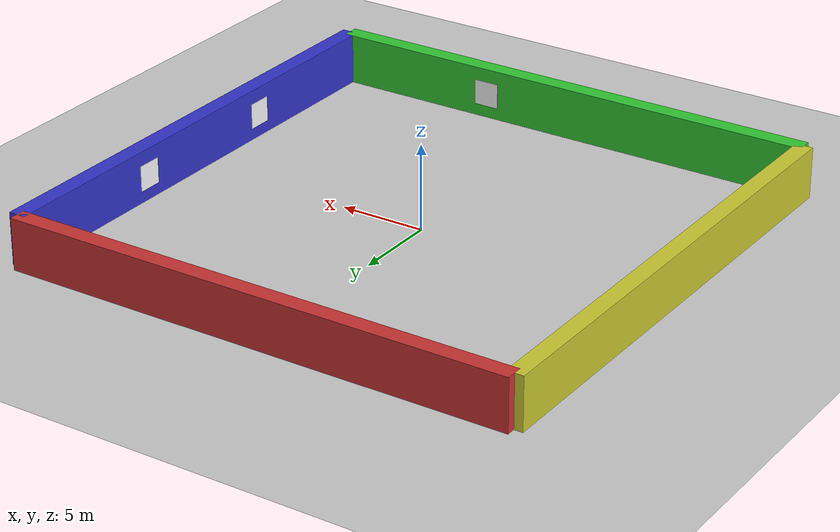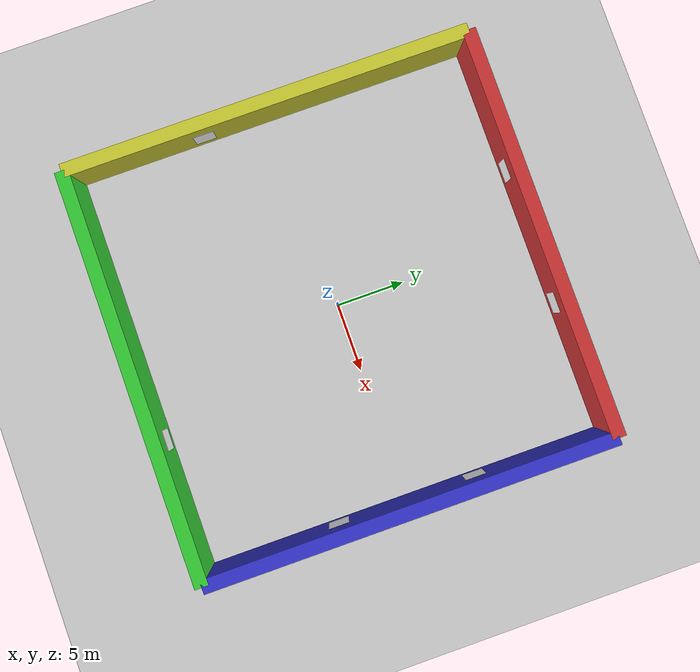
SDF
<sdf version="1.6">
  <world name="default">
    <physics name="1ms" type="ignored">
      <max_step_size>0.001</max_step_size>
      <real_time_factor>1.0</real_time_factor>
    </physics>

    <plugin filename="libignition-gazebo-physics-system.so" name="ignition::gazebo::systems::Physics"></plugin>
    <plugin filename="libignition-gazebo-user-commands-system.so" name="ignition::gazebo::systems::UserCommands"></plugin>
    <plugin filename="libignition-gazebo-scene-broadcaster-system.so" name="ignition::gazebo::systems::SceneBroadcaster"></plugin>
    <plugin filename="libignition-gazebo-sensors-system.so" name="ignition::gazebo::systems::Sensors"></plugin>

    <!-- Add a gray ground plane -->
    <model name="ground_plane">
      <static>true</static>
      <link name="link">
        <collision name="collision">
          <geometry>
            <plane>
              <normal>0 0 1</normal>
              <size>100 100</size>
            </plane>
          </geometry>
        </collision>
        <visual name="visual">
          <geometry>
            <plane>
              <normal>0 0 1</normal>
              <size>100 100</size>
            </plane>
          </geometry>
          <material>
            <ambient>0.8 0.8 0.8 1</ambient>
            <diffuse>0.8 0.8 0.8 1</diffuse>
            <specular>0.1 0.1 0.1 1</specular>
          </material>
        </visual>
      </link>
    </model>

    <!-- Add boundary walls -->
    <!-- North wall -->
    <model name="wall_north">
      <static>true</static>
      <pose>0 15 1.5 0 0 0</pose>
      <link name="link">
        <collision name="collision">
          <geometry>
            <box>
              <size>30 1.0 3</size>
            </box>
          </geometry>
        </collision>
        <visual name="visual">
          <geometry>
            <box>
              <size>30 1.0 3</size>
            </box>
          </geometry>
          <material>
            <ambient>0.8 0.2 0.2 1</ambient>
            <diffuse>0.8 0.2 0.2 1</diffuse>
            <specular>0.1 0.1 0.1 1</specular>
          </material>
        </visual>
      </link>
    </model>

    <!-- South wall -->
    <model name="wall_south">
      <static>true</static>
      <pose>0 -15 1.5 0 0 0</pose>
      <link name="link">
        <collision name="collision">
          <geometry>
            <box>
              <size>30 1.0 3</size>
            </box>
          </geometry>
        </collision>
        <visual name="visual">
          <geometry>
            <box>
              <size>30 1.0 3</size>
            </box>
          </geometry>
          <material>
            <ambient>0.2 0.8 0.2 1</ambient>
            <diffuse>0.2 0.8 0.2 1</diffuse>
            <specular>0.1 0.1 0.1 1</specular>
          </material>
        </visual>
      </link>
    </model>

    <!-- East wall -->
    <model name="wall_east">
      <static>true</static>
      <pose>15 0 1.5 0 0 0</pose>
      <link name="link">
        <collision name="collision">
          <geometry>
            <box>
              <size>1.0 30 3</size>
            </box>
          </geometry>
        </collision>
        <visual name="visual">
          <geometry>
            <box>
              <size>1.0 30 3</size>
            </box>
          </geometry>
          <material>
            <ambient>0.2 0.2 0.8 1</ambient>
            <diffuse>0.2 0.2 0.8 1</diffuse>
            <specular>0.1 0.1 0.1 1</specular>
          </material>
        </visual>
      </link>
    </model>

    <!-- West wall -->
    <model name="wall_west">
      <static>true</static>
      <pose>-15 0 1.5 0 0 0</pose>
      <link name="link">
        <collision name="collision">
          <geometry>
            <box>
              <size>1.0 30 3</size>
            </box>
          </geometry>
        </collision>
        <visual name="visual">
          <geometry>
            <box>
              <size>1.0 30 3</size>
            </box>
          </geometry>
          <material>
            <ambient>0.8 0.8 0.2 1</ambient>
            <diffuse>0.8 0.8 0.2 1</diffuse>
            <specular>0.1 0.1 0.1 1</specular>
          </material>
        </visual>
      </link>
    </model>

    <!-- Traffic Sign Posters -->

    <!-- Stop sign on north wall (facing south, towards arena centre) -->
    <include>
      <uri>model://stop_sign_poster</uri>
      <name>stop_sign_1</name>
      <pose>-5 14.4 1.5 0 0 3.14159</pose>
    </include>

    <!-- Fast sign on east wall (facing west, towards arena centre) -->
    <include>
      <uri>model://fast_sign_poster</uri>
      <name>fast_sign_1</name>
      <pose>14.4 5 1.5 0 0 -1.5708</pose>
    </include>

    <!-- Slow sign sign on south wall (facing north, towards arena centre) -->
    <include>
      <uri>model://slow_sign_poster</uri>
      <name>slow_sign_1</name>
      <pose>5 -14.4 1.5 0 0 0</pose>
    </include>
    <!-- Orange poster on west wall -->
    <include>
      <uri>model://orange_poster</uri>
      <n>orange_poster_1</n>
      <pose>-14.4 -5 1.5 0 0 1.5708</pose>
    </include>

    <!-- Vehicle poster on north wall -->
    <include>
      <uri>model://vehicle_poster</uri>
      <n>vehicle_poster_1</n>
      <pose>5 14.4 1.5 0 0 3.14159</pose>
    </include>

    <!-- Tree poster on east wall -->
    <include>
      <uri>model://tree_poster</uri>
      <n>tree_poster_1</n>
      <pose>14.4 -5 1.5 0 0 -1.5708</pose>
    </include>

    <light type="directional" name="sun">
      <cast_shadows>true</cast_shadows>
      <pose>0 0 10 0 0 0</pose>
      <diffuse>0.8 0.8 0.8 1</diffuse>
      <specular>0.2 0.2 0.2 1</specular>
      <attenuation>
        <range>1000</range>
        <constant>0.9</constant>
        <linear>0.01</linear>
        <quadratic>0.001</quadratic>
      </attenuation>
      <direction>-0.5 0.1 -0.9</direction>
    </light>

    <gravity>0 0 -9.8</gravity>
    <magnetic_field>6e-06 2.3e-05 -4.2e-05</magnetic_field>
    <atmosphere type="adiabatic">
      <pressure>101325</pressure>
      <temperature>288.15</temperature>
    </atmosphere>
  </world>
</sdf>

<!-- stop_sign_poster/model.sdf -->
<sdf version="1.8">
  <model name="stop_sign_poster">
    <static>true</static>
    <link name="poster_link">
      <visual name="visual">
        <geometry>
          <box>
            <size>1.5 0.02 1.5</size>
          </box>
        </geometry>
        <material>
          <diffuse>1 1 1 1</diffuse>
          <pbr>
            <metal>
              <albedo_map>materials/textures/stop_sign.png</albedo_map>
            </metal>
          </pbr>
        </material>
      </visual>
      <collision name="collision">
        <geometry>
          <box>
            <size>1.5 0.02 1.5</size>
          </box>
        </geometry>
      </collision>
    </link>
  </model>
</sdf>

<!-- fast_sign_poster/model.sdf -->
<sdf version="1.8">
  <model name="fast_sign_poster">
    <static>true</static>

    <link name="poster_link">
      <visual name="poster_visual">
        <geometry>
          <box>
            <size>1.5 0.02 1.5</size>
          </box>
        </geometry>
        <material>
          <diffuse>1 1 1 1</diffuse>
          <pbr>
            <metal>
              <albedo_map>materials/textures/fast_sign.png</albedo_map>
            </metal>
          </pbr>
        </material>
      </visual>

      <collision name="poster_collision">
        <geometry>
          <box>
            <size>1.5 0.02 1.5</size>
          </box>
        </geometry>
      </collision>
    </link>
  </model>
</sdf>

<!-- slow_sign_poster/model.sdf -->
<sdf version="1.8">
  <model name="slow_sign_poster">
    <static>true</static>

    <link name="poster_link">
      <visual name="poster_visual">
        <geometry>
          <box>
            <size>1.5 0.02 1.5</size>
          </box>
        </geometry>
        <material>
          <diffuse>1 1 1 1</diffuse>
          <pbr>
            <metal>
              <albedo_map>materials/textures/slow_sign.png</albedo_map>
            </metal>
          </pbr>
        </material>
      </visual>

      <collision name="poster_collision">
        <geometry>
          <box>
            <size>1.5 0.02 1.5</size>
          </box>
        </geometry>
      </collision>
    </link>
  </model>
</sdf>

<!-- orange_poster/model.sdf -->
<sdf version="1.8">
  <model name="orange_poster">
    <static>true</static>

    <link name="poster_link">
      <visual name="poster_visual">
        <geometry>
          <box>
            <size>1.5 0.02 1.5</size>
          </box>
        </geometry>
        <material>
          <diffuse>1 1 1 1</diffuse>
          <pbr>
            <metal>
              <albedo_map>materials/textures/oranges.png</albedo_map>
            </metal>
          </pbr>
        </material>
      </visual>

      <collision name="poster_collision">
        <geometry>
          <box>
            <size>1.5 0.02 1.5</size>
          </box>
        </geometry>
      </collision>
    </link>
  </model>
</sdf>

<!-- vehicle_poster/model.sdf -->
<sdf version="1.8">
  <model name="vehicle_poster">
    <static>true</static>

    <link name="poster_link">
      <visual name="poster_visual">
        <geometry>
          <box>
            <size>1.5 0.02 1.5</size>
          </box>
        </geometry>
        <material>
          <diffuse>1 1 1 1</diffuse>
          <pbr>
            <metal>
              <albedo_map>materials/textures/cars .png</albedo_map>
            </metal>
          </pbr>
        </material>
      </visual>

      <collision name="poster_collision">
        <geometry>
          <box>
            <size>1.5 0.02 1.5</size>
          </box>
        </geometry>
      </collision>
    </link>
  </model>
</sdf>

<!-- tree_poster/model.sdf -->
<sdf version="1.8">
  <model name="tree_poster">
    <static>true</static>

    <link name="poster_link">
      <visual name="poster_visual">
        <geometry>
          <box>
            <size>1.5 0.02 1.5</size>
          </box>
        </geometry>
        <material>
          <diffuse>1 1 1 1</diffuse>
          <pbr>
            <metal>
              <albedo_map>materials/textures/trees.png</albedo_map>
            </metal>
          </pbr>
        </material>
      </visual>

      <collision name="poster_collision">
        <geometry>
          <box>
            <size>1.5 0.02 1.5</size>
          </box>
        </geometry>
      </collision>
    </link>
  </model>
</sdf>
